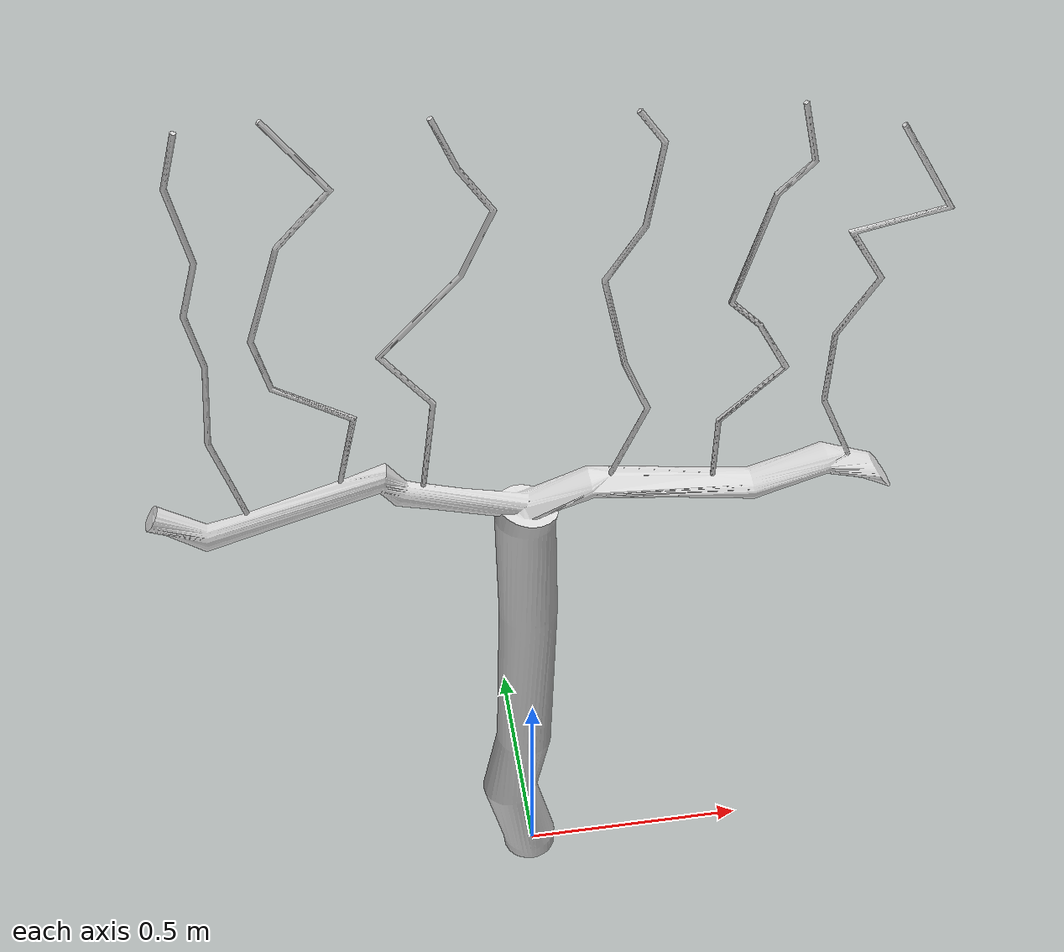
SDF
<?xml version="1.0" ?>
<sdf version="1.6">
  <model name="vinya">
    <static>true</static>
    <link name="link">
      <collision name="collision">
        <geometry>
          <mesh>
            <uri>model://vinya/meshes/vinya.dae</uri>
          </mesh>
        </geometry>
      </collision>
      <visual name="visual">
        <geometry>
          <mesh>
            <uri>model://vinya/meshes/vinya.dae</uri>
          </mesh>
        </geometry>
      </visual>
    </link>
  </model>
</sdf>
